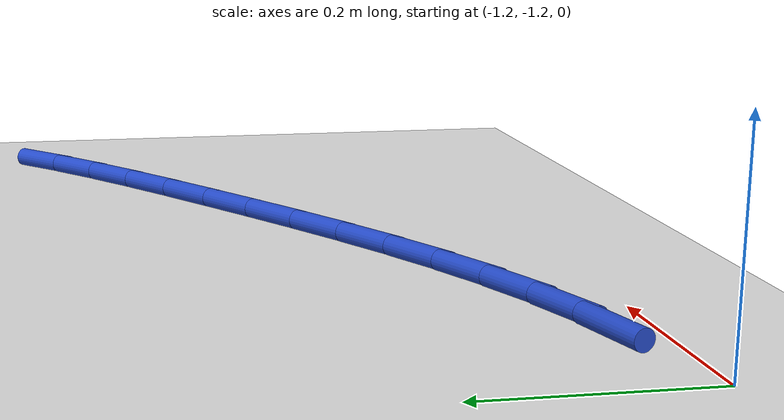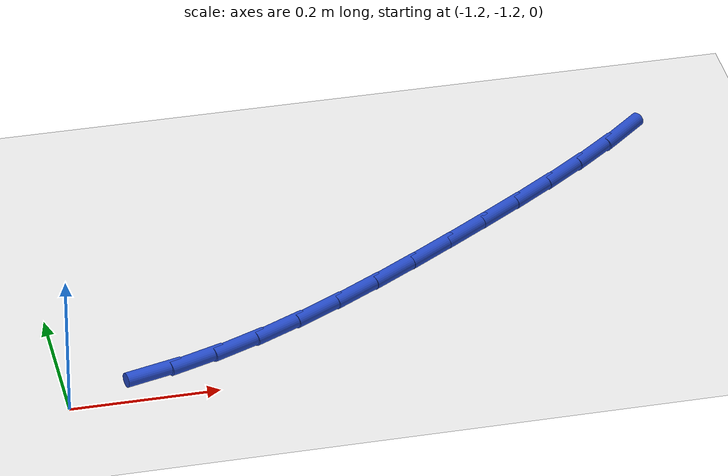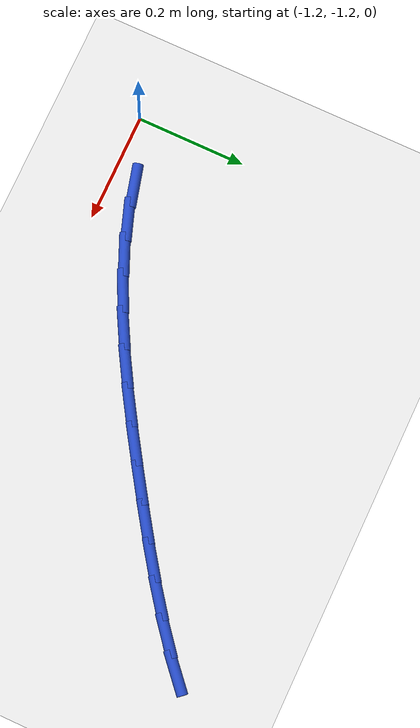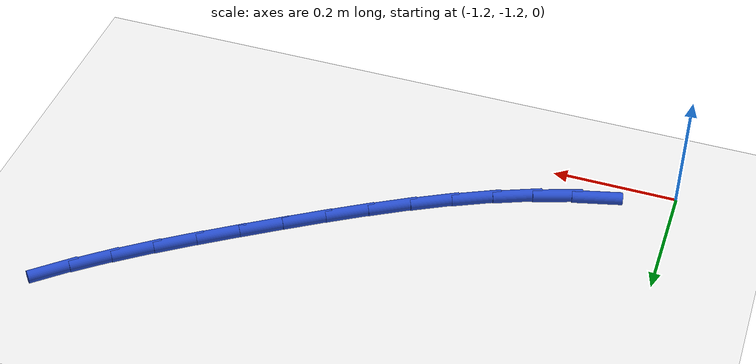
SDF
<sdf version="1.6">
 <world name="default">
  <model name="ground_plane">
   <static>1</static>
   <link name="link">
    <collision name="collision">
     <geometry><plane><normal>0 0 1</normal><size>100 100</size></plane></geometry>
     <surface><friction><ode><mu>100</mu><mu2>50</mu2></ode></friction></surface>
    </collision>
    <visual name="visual">
     <cast_shadows>0</cast_shadows>
     <geometry><plane><normal>0 0 1</normal><size>100 100</size></plane></geometry>
     <material>
      <script><uri>file://media/materials/scripts/gazebo.material</uri><name>Gazebo/WhiteGlow</name></script>
     </material>
    </visual>
   </link>
  </model>
  <model name="line">
   <link name="link_84">
    <pose>-1.0806080880901385 -1.155417991038489 0.01 0 1.57 0.2591236323277933</pose>
    <collision name="collision">
     <geometry><cylinder><radius>0.01</radius><length>0.08</length></cylinder></geometry>
    </collision>
    <visual name="visual">
     <material>
      <script><name>Gazebo/Blue</name><uri>file://media/materials/scripts/gazebo.material</uri></script>
     </material>
     <geometry><cylinder><radius>0.01</radius><length>0.08</length></cylinder></geometry>
    </visual>
   </link>
   <link name="link_85">
    <pose>-1.0202557671426136 -1.1394195941599148 0.01 0 1.57 0.3373007892411263</pose>
    <collision name="collision">
     <geometry><cylinder><radius>0.01</radius><length>0.08</length></cylinder></geometry>
    </collision>
    <visual name="visual">
     <material>
      <script><name>Gazebo/Blue</name><uri>file://media/materials/scripts/gazebo.material</uri></script>
     </material>
     <geometry><cylinder><radius>0.01</radius><length>0.08</length></cylinder></geometry>
    </visual>
   </link>
   <link name="link_86">
    <pose>-0.9598939374137687 -1.118250531145159 0.01 0 1.57 0.4021253565901989</pose>
    <collision name="collision">
     <geometry><cylinder><radius>0.01</radius><length>0.08</length></cylinder></geometry>
    </collision>
    <visual name="visual">
     <material>
      <script><name>Gazebo/Blue</name><uri>file://media/materials/scripts/gazebo.material</uri></script>
     </material>
     <geometry><cylinder><radius>0.01</radius><length>0.08</length></cylinder></geometry>
    </visual>
   </link>
   <link name="link_87">
    <pose>-0.8996580694327938 -1.0926321714031186 0.01 0 1.57 0.4550617305463667</pose>
    <collision name="collision">
     <geometry><cylinder><radius>0.01</radius><length>0.08</length></cylinder></geometry>
    </collision>
    <visual name="visual">
     <material>
      <script><name>Gazebo/Blue</name><uri>file://media/materials/scripts/gazebo.material</uri></script>
     </material>
     <geometry><cylinder><radius>0.01</radius><length>0.08</length></cylinder></geometry>
    </visual>
   </link>
   <link name="link_88">
    <pose>-0.8396836337288808 -1.0632858843426929 0.01 0 1.57 0.49748214611098607</pose>
    <collision name="collision">
     <geometry><cylinder><radius>0.01</radius><length>0.08</length></cylinder></geometry>
    </collision>
    <visual name="visual">
     <material>
      <script><name>Gazebo/Blue</name><uri>file://media/materials/scripts/gazebo.material</uri></script>
     </material>
     <geometry><cylinder><radius>0.01</radius><length>0.08</length></cylinder></geometry>
    </visual>
   </link>
   <link name="link_89">
    <pose>-0.7801061008312188 -1.0309330393727785 0.01 0 1.57 0.5305352895756404</pose>
    <collision name="collision">
     <geometry><cylinder><radius>0.01</radius><length>0.08</length></cylinder></geometry>
    </collision>
    <visual name="visual">
     <material>
      <script><name>Gazebo/Blue</name><uri>file://media/materials/scripts/gazebo.material</uri></script>
     </material>
     <geometry><cylinder><radius>0.01</radius><length>0.08</length></cylinder></geometry>
    </visual>
   </link>
   <link name="link_90">
    <pose>-0.7210609412690002 -0.9962950059022749 0.01 0 1.57 0.5550936806704608</pose>
    <collision name="collision">
     <geometry><cylinder><radius>0.01</radius><length>0.08</length></cylinder></geometry>
    </collision>
    <visual name="visual">
     <material>
      <script><name>Gazebo/Blue</name><uri>file://media/materials/scripts/gazebo.material</uri></script>
     </material>
     <geometry><cylinder><radius>0.01</radius><length>0.08</length></cylinder></geometry>
    </visual>
   </link>
   <link name="link_91">
    <pose>-0.6626836255714144 -0.9600931533400793 0.01 0 1.57 0.5717361158033849</pose>
    <collision name="collision">
     <geometry><cylinder><radius>0.01</radius><length>0.08</length></cylinder></geometry>
    </collision>
    <visual name="visual">
     <material>
      <script><name>Gazebo/Blue</name><uri>file://media/materials/scripts/gazebo.material</uri></script>
     </material>
     <geometry><cylinder><radius>0.01</radius><length>0.08</length></cylinder></geometry>
    </visual>
   </link>
   <link name="link_92">
    <pose>-0.6051096242676531 -0.9230488510950898 0.01 0 1.57 0.5814082874369687</pose>
    <collision name="collision">
     <geometry><cylinder><radius>0.01</radius><length>0.08</length></cylinder></geometry>
    </collision>
    <visual name="visual">
     <material>
      <script><name>Gazebo/Blue</name><uri>file://media/materials/scripts/gazebo.material</uri></script>
     </material>
     <geometry><cylinder><radius>0.01</radius><length>0.08</length></cylinder></geometry>
    </visual>
   </link>
   <link name="link_93">
    <pose>-0.5484824363788753 -0.8858344203443703 0.01 0 1.57 0.5928124996154646</pose>
    <collision name="collision">
     <geometry><cylinder><radius>0.01</radius><length>0.08</length></cylinder></geometry>
    </collision>
    <visual name="visual">
     <material>
      <script><name>Gazebo/Blue</name><uri>file://media/materials/scripts/gazebo.material</uri></script>
     </material>
     <geometry><cylinder><radius>0.01</radius><length>0.08</length></cylinder></geometry>
    </visual>
   </link>
   <link name="link_94">
    <pose>-0.49304867884772674 -0.8484922069547142 0.01 0 1.57 0.6122037024487923</pose>
    <collision name="collision">
     <geometry><cylinder><radius>0.01</radius><length>0.08</length></cylinder></geometry>
    </collision>
    <visual name="visual">
     <material>
      <script><name>Gazebo/Blue</name><uri>file://media/materials/scripts/gazebo.material</uri></script>
     </material>
     <geometry><cylinder><radius>0.01</radius><length>0.08</length></cylinder></geometry>
    </visual>
   </link>
   <link name="link_95">
    <pose>-0.43912645902819053 -0.8106278025079544 0.01 0 1.57 0.6400696450384912</pose>
    <collision name="collision">
     <geometry><cylinder><radius>0.01</radius><length>0.08</length></cylinder></geometry>
    </collision>
    <visual name="visual">
     <material>
      <script><name>Gazebo/Blue</name><uri>file://media/materials/scripts/gazebo.material</uri></script>
     </material>
     <geometry><cylinder><radius>0.01</radius><length>0.08</length></cylinder></geometry>
    </visual>
   </link>
   <link name="link_96">
    <pose>-0.3870353199828417 -0.7718380274533093 0.01 0 1.57 0.6767634017290288</pose>
    <collision name="collision">
     <geometry><cylinder><radius>0.01</radius><length>0.08</length></cylinder></geometry>
    </collision>
    <visual name="visual">
     <material>
      <script><name>Gazebo/Blue</name><uri>file://media/materials/scripts/gazebo.material</uri></script>
     </material>
     <geometry><cylinder><radius>0.01</radius><length>0.08</length></cylinder></geometry>
    </visual>
   </link>
   <link name="link_97">
    <pose>-0.33709480477425335 -0.7317197022399957 0.01 0 1.57 0.7225581704170028</pose>
    <collision name="collision">
     <geometry><cylinder><radius>0.01</radius><length>0.08</length></cylinder></geometry>
    </collision>
    <visual name="visual">
     <material>
      <script><name>Gazebo/Blue</name><uri>file://media/materials/scripts/gazebo.material</uri></script>
     </material>
     <geometry><cylinder><radius>0.01</radius><length>0.08</length></cylinder></geometry>
    </visual>
   </link>
  </model>
 </world>
</sdf>
